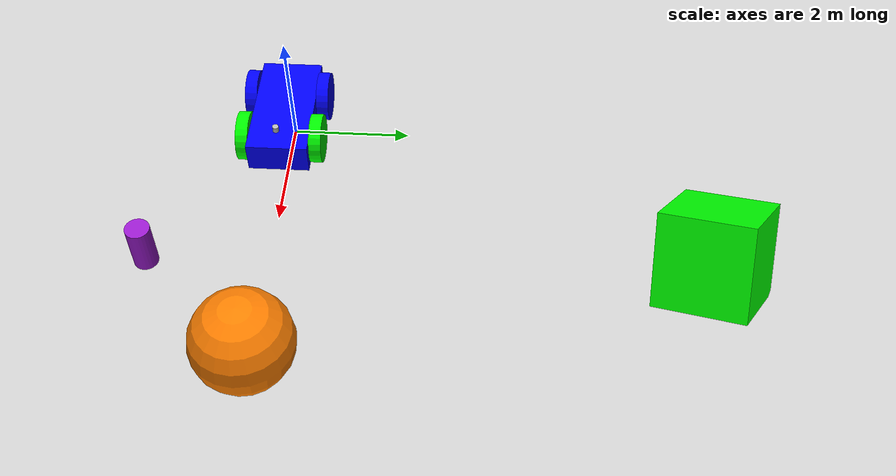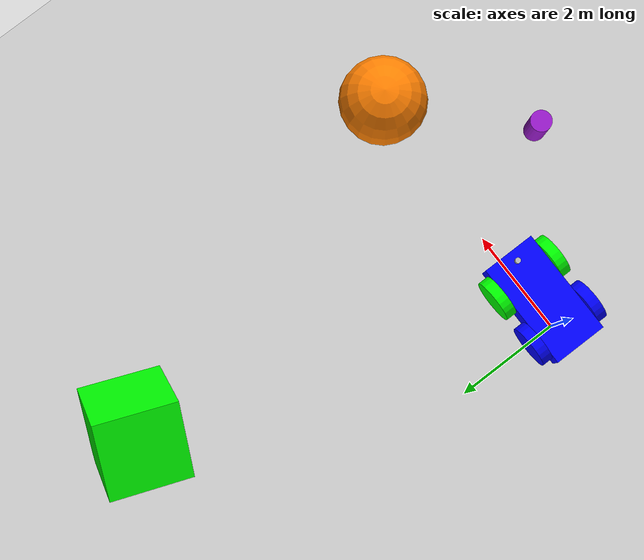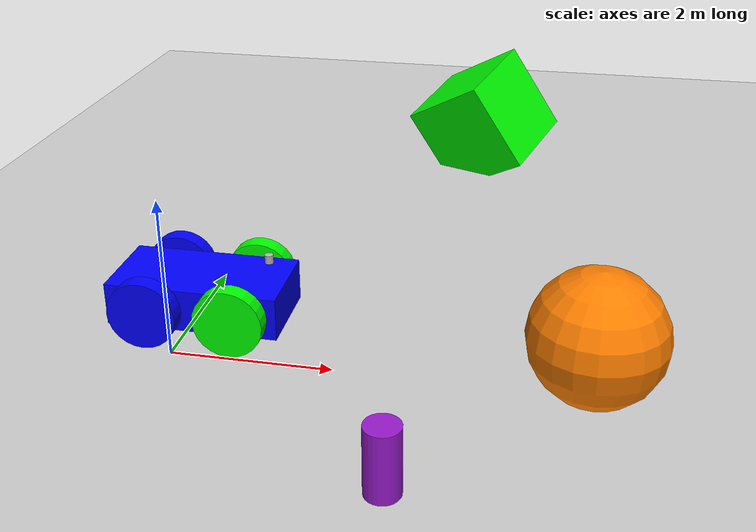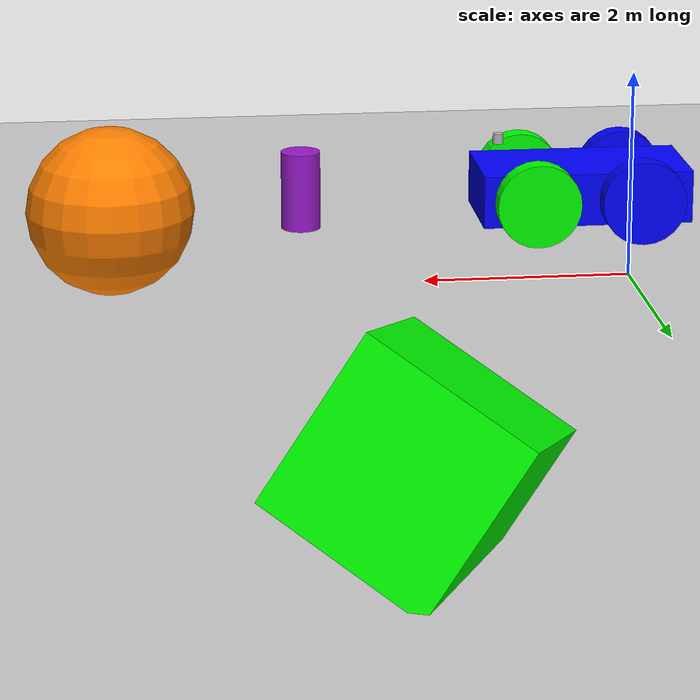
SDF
<?xml version="1.0" ?>
<sdf version="1.10">
    <world name="car_world">
        <physics name="1ms" type="ignored">
            <max_step_size>0.001</max_step_size>
            <real_time_factor>1.0</real_time_factor>
        </physics>

        <plugin filename="gz-sim-sensors-system"
                name="gz::sim::systems::Sensors">
            <render_engine>ogre2</render_engine>
        </plugin>
        <plugin
            filename="gz-sim-physics-system"
            name="gz::sim::systems::Physics">
        </plugin>
        <plugin
            filename="gz-sim-user-commands-system"
            name="gz::sim::systems::UserCommands">
        </plugin>
        <plugin
            filename="gz-sim-scene-broadcaster-system"
            name="gz::sim::systems::SceneBroadcaster">
        </plugin>

        <light type="directional" name="sun">
            <cast_shadows>true</cast_shadows>
            <pose>0 0 10 0 0 0</pose>
            <diffuse>0.8 0.8 0.8 1</diffuse>
            <specular>0.2 0.2 0.2 1</specular>
            <attenuation>
                <range>1000</range>
                <constant>0.9</constant>
                <linear>0.01</linear>
                <quadratic>0.001</quadratic>
            </attenuation>
            <direction>-0.5 0.1 -0.9</direction>
        </light>

        <model name="ground_plane">
            <static>true</static>
            <link name="link">
                <collision name="collision">
                <geometry>
                    <plane>
                    <normal>0 0 1</normal>
                    </plane>
                </geometry>
                </collision>
                <visual name="visual">
                <geometry>
                    <plane>
                    <normal>0 0 1</normal>
                    <size>100 100</size>
                    </plane>
                </geometry>
                <material>
                    <ambient>0.8 0.8 0.8 1</ambient>
                    <diffuse>0.8 0.8 0.8 1</diffuse>
                    <specular>0.8 0.8 0.8 1</specular>
                </material>
                </visual>
            </link>
        </model>

        <model name="green_box">
            <pose>3 7 0.75 2 1 0</pose>
            <link name="link">
                <collision name="collision">
                    <geometry>
                        <box><size>1.5 1.5 1.5</size></box>
                    </geometry>
                </collision>
                <visual name="visual">
                    <geometry>
                        <box><size>1.5 1.5 1.5</size></box>
                    </geometry>
                    <material>
                        <ambient>0 1 0 1</ambient>
                        <diffuse>0 1 0 1</diffuse>
                        <specular>0.5 0.5 0.5 1</specular>
                    </material>
                </visual>
            </link>
        </model>

<model name="purple_cylinder">
            <pose>3 -2 0.4 0 0 0</pose>
            <link name="link">
                <collision name="collision">
                    <geometry>
                        <cylinder>
                            <radius>0.2</radius> <length>0.8</length> </cylinder>
                    </geometry>
                </collision>
                <visual name="visual">
                    <geometry>
                        <cylinder>
                            <radius>0.2</radius>
                            <length>0.8</length>
                        </cylinder>
                    </geometry>
                    <material>
                        <ambient>0.6 0.1 0.8 1</ambient>
                        <diffuse>0.6 0.1 0.8 1</diffuse>
                        <specular>0.5 0.5 0.5 1</specular>
                    </material>
                </visual>
            </link>
        </model>

        <model name="orange_sphere">
            <pose>5 0 0.8 0 0 0</pose>
            <link name="link">
                <collision name="collision">
                    <geometry>
                        <sphere><radius>0.8</radius></sphere>
                    </geometry>
                </collision>
                <visual name="visual">
                    <geometry>
                        <sphere><radius>0.8</radius></sphere>
                    </geometry>
                    <material>
                        <ambient>1.0 0.5 0.0 1</ambient>
                        <diffuse>1.0 0.5 0.0 1</diffuse>
                        <specular>0.5 0.5 0.5 1</specular>
                    </material>
                </visual>
            </link>
        </model>

<model name='vehicle_blue' canonical_link='chassis'>
    <pose relative_to='world'>0 0 0.5 0 0 0</pose>

    <plugin filename="gz-sim-diff-drive-system" name="gz::sim::systems::DiffDrive">
        <left_joint>left_front_wheel_joint</left_joint>
        <left_joint>left_back_wheel_joint</left_joint>
        <right_joint>right_front_wheel_joint</right_joint>
        <right_joint>right_back_wheel_joint</right_joint>
        <wheel_separation>1.2</wheel_separation>
        <wheel_radius>0.4</wheel_radius>
        <odom_publish_frequency>1</odom_publish_frequency>
        <topic>cmd_vel</topic>
    </plugin>

    <link name='chassis'>
        <pose relative_to='__model__'>0.5 0 0.4 0 0 0</pose>
        <inertial>
            <mass>5.0</mass>
            <inertia>
                <ixx>0.5</ixx><ixy>0</ixy><ixz>0</ixz>
                <iyy>0.5</iyy><iyz>0</iyz><izz>0.5</izz>
            </inertia>
        </inertial>
        <visual name='visual'>
            <geometry><box><size>2.0 1.0 0.5</size></box></geometry>
            <material>
                <ambient>0.0 0.0 1.0 1</ambient>
                <diffuse>0.0 0.0 1.0 1</diffuse>
                <specular>0.0 0.0 1.0 1</specular>
            </material>
        </visual>
        <collision name='collision'>
            <geometry><box><size>2.0 1.0 0.5</size></box></geometry>
        </collision>
    </link>

    <link name='left_back_wheel'>
        <pose relative_to="chassis">-0.5 0.6 0 -1.5707 0 0</pose>
        <inertial>
            <mass>1</mass>
            <inertia><ixx>0.043</ixx><iyy>0.043</iyy><izz>0.08</izz></inertia>
        </inertial>
        <visual name='visual'>
            <geometry><cylinder><radius>0.4</radius><length>0.2</length></cylinder></geometry>
            <material><ambient>0 0 1 1</ambient><diffuse>0 0 1 1</diffuse></material>
        </visual>
        <collision name='collision'>
            <geometry><cylinder><radius>0.4</radius><length>0.2</length></cylinder></geometry>
            <surface><friction><ode><mu>1.0</mu><mu2>1.0</mu2></ode></friction></surface>
        </collision>
    </link>

    <link name='right_back_wheel'>
        <pose relative_to="chassis">-0.5 -0.6 0 -1.5707 0 0</pose>
        <inertial>
            <mass>1</mass>
            <inertia><ixx>0.043</ixx><iyy>0.043</iyy><izz>0.08</izz></inertia>
        </inertial>
        <visual name='visual'>
            <geometry><cylinder><radius>0.4</radius><length>0.2</length></cylinder></geometry>
            <material><ambient>0 0 1 1</ambient><diffuse>0 0 1 1</diffuse></material>
        </visual>
        <collision name='collision'>
            <geometry><cylinder><radius>0.4</radius><length>0.2</length></cylinder></geometry>
            <surface><friction><ode><mu>1.0</mu><mu2>1.0</mu2></ode></friction></surface>
        </collision>
    </link>

    <link name='left_front_wheel'>
        <pose relative_to="chassis">0.5 0.6 0 -1.5707 0 0</pose>
        <inertial>
            <mass>1</mass>
            <inertia><ixx>0.043</ixx><iyy>0.043</iyy><izz>0.08</izz></inertia>
        </inertial>
        <visual name='visual'>
            <geometry><cylinder><radius>0.4</radius><length>0.2</length></cylinder></geometry>
            <material><ambient>0 1 0 1</ambient><diffuse>0 1 0 1</diffuse></material>
        </visual>
        <collision name='collision'>
            <geometry><cylinder><radius>0.4</radius><length>0.2</length></cylinder></geometry>
            <surface><friction><ode><mu>1.0</mu><mu2>1.0</mu2></ode></friction></surface>
        </collision>
    </link>

    <link name='right_front_wheel'>
        <pose relative_to="chassis">0.5 -0.6 0 -1.5707 0 0</pose>
        <inertial>
            <mass>1</mass>
            <inertia><ixx>0.043</ixx><iyy>0.043</iyy><izz>0.08</izz></inertia>
        </inertial>
        <visual name='visual'>
            <geometry><cylinder><radius>0.4</radius><length>0.2</length></cylinder></geometry>
            <material><ambient>0 1 0 1</ambient><diffuse>0 1 0 1</diffuse></material>
        </visual>
        <collision name='collision'>
            <geometry><cylinder><radius>0.4</radius><length>0.2</length></cylinder></geometry>
            <surface><friction><ode><mu>1.0</mu><mu2>1.0</mu2></ode></friction></surface>
        </collision>
    </link>

<link name='lidar_link'>
    <pose relative_to='chassis'>0.8 0 0.5 0 0 0</pose>
    <inertial>
        <mass>0.1</mass>
        <inertia>
            <ixx>0.000166667</ixx>
            <iyy>0.000166667</iyy>
            <izz>0.000166667</izz>
        </inertia>
    </inertial>
    <visual name='visual'>
        <geometry>
            <cylinder>
                <radius>0.05</radius>
                <length>0.1</length>
            </cylinder>
        </geometry>
    </visual>
    <sensor name='gpu_lidar' type='gpu_lidar'>
        <topic>lidar</topic>
        <update_rate>10</update_rate>
        <lidar>
            <scan>
                <horizontal>
                    <samples>640</samples>
                    <resolution>1</resolution>
                    <min_angle>-1.396263</min_angle>
                    <max_angle>1.396263</max_angle>
                </horizontal>
            </scan>
            <range>
                <min>0.08</min>
                <max>10.0</max>
            </range>
        </lidar>
        <visualize>true</visualize>
    </sensor>
</link>

<joint name='lidar_joint' type='fixed'>
    <parent>chassis</parent>
    <child>lidar_link</child>
</joint>

    <joint name='left_back_wheel_joint' type='revolute'>
        <parent>chassis</parent><child>left_back_wheel</child>
        <axis><xyz>0 0 1</xyz><limit><lower>-1e+16</lower><upper>1e+16</upper></limit></axis>
    </joint>

    <joint name='right_back_wheel_joint' type='revolute'>
        <parent>chassis</parent><child>right_back_wheel</child>
        <axis><xyz>0 0 1</xyz><limit><lower>-1e+16</lower><upper>1e+16</upper></limit></axis>
    </joint>

    <joint name='left_front_wheel_joint' type='revolute'>
        <parent>chassis</parent><child>left_front_wheel</child>
        <axis><xyz>0 0 1</xyz><limit><lower>-1e+16</lower><upper>1e+16</upper></limit></axis>
    </joint>

    <joint name='right_front_wheel_joint' type='revolute'>
        <parent>chassis</parent><child>right_front_wheel</child>
        <axis><xyz>0 0 1</xyz><limit><lower>-1e+16</lower><upper>1e+16</upper></limit></axis>
    </joint>
</model>
    </world>
</sdf>
